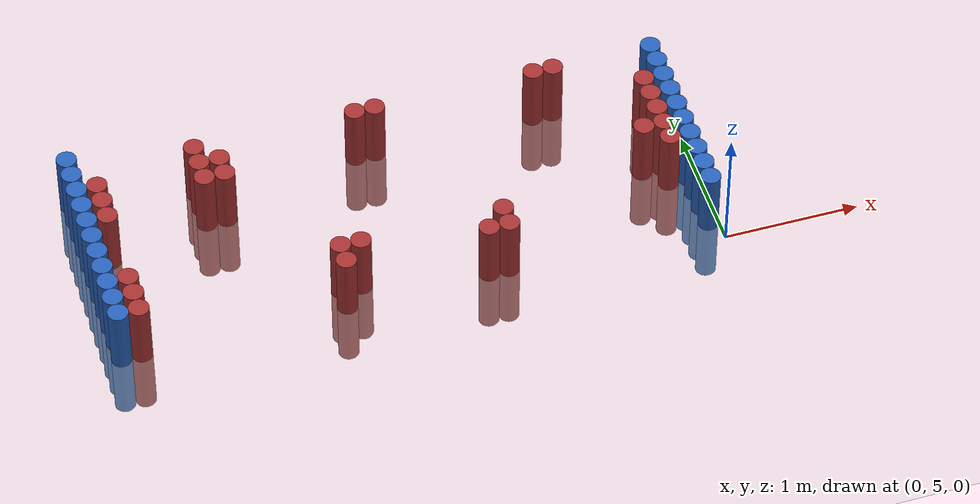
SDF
<sdf version="1.6">
 <world name="default">
  <model name="ground_plane">
   <static>1</static>
   <link name="link">
    <collision name="collision">
     <geometry><plane><normal>0 0 1</normal><size>100 100</size></plane></geometry>
     <surface><friction><ode><mu>100</mu><mu2>50</mu2></ode></friction></surface>
    </collision>
    <visual name="visual">
     <cast_shadows>0</cast_shadows>
     <geometry><plane><normal>0 0 1</normal><size>100 100</size></plane></geometry>
     <material>
      <script><uri>file://media/materials/scripts/gazebo.material</uri><name>Gazebo/Grey</name></script>
     </material>
    </visual>
   </link>
  </model>
  <model name="unit_cylinder_96">
   <static>1</static>
   <pose>-4.425000 5.175000 0.000000 0.000000 0.000000 0.000000</pose>
   <link name="link">
    <inertial>
     <mass>1</mass>
     <inertia><ixx>0.145833</ixx><ixy>0</ixy><ixz>0</ixz><iyy>0.145833</iyy><iyz>0</iyz><izz>0.125</izz></inertia>
    </inertial>
    <collision name="collision">
     <geometry><cylinder><radius>0.075000</radius><length>1</length></cylinder></geometry>
    </collision>
    <visual name="visual">
     <geometry><cylinder><radius>0.075000</radius><length>1</length></cylinder></geometry>
     <material>
      <ambient>0.152000 0.379000 0.720000 1</ambient>
      <diffuse>0.152000 0.379000 0.720000 1</diffuse>
     </material>
     <material>
      <script><name>Gazebo/Grey</name><uri>file://media/materials/scripts/gazebo.material</uri></script>
     </material>
    </visual>
   </link>
  </model>
  <model name="unit_cylinder_97">
   <static>1</static>
   <pose>-4.425000 5.325000 0.000000 0.000000 0.000000 0.000000</pose>
   <link name="link">
    <inertial>
     <mass>1</mass>
     <inertia><ixx>0.145833</ixx><ixy>0</ixy><ixz>0</ixz><iyy>0.145833</iyy><iyz>0</iyz><izz>0.125</izz></inertia>
    </inertial>
    <collision name="collision">
     <geometry><cylinder><radius>0.075000</radius><length>1</length></cylinder></geometry>
    </collision>
    <visual name="visual">
     <geometry><cylinder><radius>0.075000</radius><length>1</length></cylinder></geometry>
     <material>
      <ambient>0.152000 0.379000 0.720000 1</ambient>
      <diffuse>0.152000 0.379000 0.720000 1</diffuse>
     </material>
     <material>
      <script><name>Gazebo/Grey</name><uri>file://media/materials/scripts/gazebo.material</uri></script>
     </material>
    </visual>
   </link>
  </model>
  <model name="unit_cylinder_98">
   <static>1</static>
   <pose>-4.425000 5.475000 0.000000 0.000000 0.000000 0.000000</pose>
   <link name="link">
    <inertial>
     <mass>1</mass>
     <inertia><ixx>0.145833</ixx><ixy>0</ixy><ixz>0</ixz><iyy>0.145833</iyy><iyz>0</iyz><izz>0.125</izz></inertia>
    </inertial>
    <collision name="collision">
     <geometry><cylinder><radius>0.075000</radius><length>1</length></cylinder></geometry>
    </collision>
    <visual name="visual">
     <geometry><cylinder><radius>0.075000</radius><length>1</length></cylinder></geometry>
     <material>
      <ambient>0.152000 0.379000 0.720000 1</ambient>
      <diffuse>0.152000 0.379000 0.720000 1</diffuse>
     </material>
     <material>
      <script><name>Gazebo/Grey</name><uri>file://media/materials/scripts/gazebo.material</uri></script>
     </material>
    </visual>
   </link>
  </model>
  <model name="unit_cylinder_99">
   <static>1</static>
   <pose>-4.425000 5.625000 0.000000 0.000000 0.000000 0.000000</pose>
   <link name="link">
    <inertial>
     <mass>1</mass>
     <inertia><ixx>0.145833</ixx><ixy>0</ixy><ixz>0</ixz><iyy>0.145833</iyy><iyz>0</iyz><izz>0.125</izz></inertia>
    </inertial>
    <collision name="collision">
     <geometry><cylinder><radius>0.075000</radius><length>1</length></cylinder></geometry>
    </collision>
    <visual name="visual">
     <geometry><cylinder><radius>0.075000</radius><length>1</length></cylinder></geometry>
     <material>
      <ambient>0.152000 0.379000 0.720000 1</ambient>
      <diffuse>0.152000 0.379000 0.720000 1</diffuse>
     </material>
     <material>
      <script><name>Gazebo/Grey</name><uri>file://media/materials/scripts/gazebo.material</uri></script>
     </material>
    </visual>
   </link>
  </model>
  <model name="unit_cylinder_100">
   <static>1</static>
   <pose>-4.425000 5.775000 0.000000 0.000000 0.000000 0.000000</pose>
   <link name="link">
    <inertial>
     <mass>1</mass>
     <inertia><ixx>0.145833</ixx><ixy>0</ixy><ixz>0</ixz><iyy>0.145833</iyy><iyz>0</iyz><izz>0.125</izz></inertia>
    </inertial>
    <collision name="collision">
     <geometry><cylinder><radius>0.075000</radius><length>1</length></cylinder></geometry>
    </collision>
    <visual name="visual">
     <geometry><cylinder><radius>0.075000</radius><length>1</length></cylinder></geometry>
     <material>
      <ambient>0.152000 0.379000 0.720000 1</ambient>
      <diffuse>0.152000 0.379000 0.720000 1</diffuse>
     </material>
     <material>
      <script><name>Gazebo/Grey</name><uri>file://media/materials/scripts/gazebo.material</uri></script>
     </material>
    </visual>
   </link>
  </model>
  <model name="unit_cylinder_101">
   <static>1</static>
   <pose>-4.425000 5.925000 0.000000 0.000000 0.000000 0.000000</pose>
   <link name="link">
    <inertial>
     <mass>1</mass>
     <inertia><ixx>0.145833</ixx><ixy>0</ixy><ixz>0</ixz><iyy>0.145833</iyy><iyz>0</iyz><izz>0.125</izz></inertia>
    </inertial>
    <collision name="collision">
     <geometry><cylinder><radius>0.075000</radius><length>1</length></cylinder></geometry>
    </collision>
    <visual name="visual">
     <geometry><cylinder><radius>0.075000</radius><length>1</length></cylinder></geometry>
     <material>
      <ambient>0.152000 0.379000 0.720000 1</ambient>
      <diffuse>0.152000 0.379000 0.720000 1</diffuse>
     </material>
     <material>
      <script><name>Gazebo/Grey</name><uri>file://media/materials/scripts/gazebo.material</uri></script>
     </material>
    </visual>
   </link>
  </model>
  <model name="unit_cylinder_102">
   <static>1</static>
   <pose>-4.425000 6.075000 0.000000 0.000000 0.000000 0.000000</pose>
   <link name="link">
    <inertial>
     <mass>1</mass>
     <inertia><ixx>0.145833</ixx><ixy>0</ixy><ixz>0</ixz><iyy>0.145833</iyy><iyz>0</iyz><izz>0.125</izz></inertia>
    </inertial>
    <collision name="collision">
     <geometry><cylinder><radius>0.075000</radius><length>1</length></cylinder></geometry>
    </collision>
    <visual name="visual">
     <geometry><cylinder><radius>0.075000</radius><length>1</length></cylinder></geometry>
     <material>
      <ambient>0.152000 0.379000 0.720000 1</ambient>
      <diffuse>0.152000 0.379000 0.720000 1</diffuse>
     </material>
     <material>
      <script><name>Gazebo/Grey</name><uri>file://media/materials/scripts/gazebo.material</uri></script>
     </material>
    </visual>
   </link>
  </model>
  <model name="unit_cylinder_103">
   <static>1</static>
   <pose>-4.425000 6.225000 0.000000 0.000000 0.000000 0.000000</pose>
   <link name="link">
    <inertial>
     <mass>1</mass>
     <inertia><ixx>0.145833</ixx><ixy>0</ixy><ixz>0</ixz><iyy>0.145833</iyy><iyz>0</iyz><izz>0.125</izz></inertia>
    </inertial>
    <collision name="collision">
     <geometry><cylinder><radius>0.075000</radius><length>1</length></cylinder></geometry>
    </collision>
    <visual name="visual">
     <geometry><cylinder><radius>0.075000</radius><length>1</length></cylinder></geometry>
     <material>
      <ambient>0.152000 0.379000 0.720000 1</ambient>
      <diffuse>0.152000 0.379000 0.720000 1</diffuse>
     </material>
     <material>
      <script><name>Gazebo/Grey</name><uri>file://media/materials/scripts/gazebo.material</uri></script>
     </material>
    </visual>
   </link>
  </model>
  <model name="unit_cylinder_104">
   <static>1</static>
   <pose>-4.425000 6.375000 0.000000 0.000000 0.000000 0.000000</pose>
   <link name="link">
    <inertial>
     <mass>1</mass>
     <inertia><ixx>0.145833</ixx><ixy>0</ixy><ixz>0</ixz><iyy>0.145833</iyy><iyz>0</iyz><izz>0.125</izz></inertia>
    </inertial>
    <collision name="collision">
     <geometry><cylinder><radius>0.075000</radius><length>1</length></cylinder></geometry>
    </collision>
    <visual name="visual">
     <geometry><cylinder><radius>0.075000</radius><length>1</length></cylinder></geometry>
     <material>
      <ambient>0.152000 0.379000 0.720000 1</ambient>
      <diffuse>0.152000 0.379000 0.720000 1</diffuse>
     </material>
     <material>
      <script><name>Gazebo/Grey</name><uri>file://media/materials/scripts/gazebo.material</uri></script>
     </material>
    </visual>
   </link>
  </model>
  <model name="unit_cylinder_105">
   <static>1</static>
   <pose>-4.425000 6.525000 0.000000 0.000000 0.000000 0.000000</pose>
   <link name="link">
    <inertial>
     <mass>1</mass>
     <inertia><ixx>0.145833</ixx><ixy>0</ixy><ixz>0</ixz><iyy>0.145833</iyy><iyz>0</iyz><izz>0.125</izz></inertia>
    </inertial>
    <collision name="collision">
     <geometry><cylinder><radius>0.075000</radius><length>1</length></cylinder></geometry>
    </collision>
    <visual name="visual">
     <geometry><cylinder><radius>0.075000</radius><length>1</length></cylinder></geometry>
     <material>
      <ambient>0.152000 0.379000 0.720000 1</ambient>
      <diffuse>0.152000 0.379000 0.720000 1</diffuse>
     </material>
     <material>
      <script><name>Gazebo/Grey</name><uri>file://media/materials/scripts/gazebo.material</uri></script>
     </material>
    </visual>
   </link>
  </model>
  <model name="unit_cylinder_106">
   <static>1</static>
   <pose>-4.425000 6.675000 0.000000 0.000000 0.000000 0.000000</pose>
   <link name="link">
    <inertial>
     <mass>1</mass>
     <inertia><ixx>0.145833</ixx><ixy>0</ixy><ixz>0</ixz><iyy>0.145833</iyy><iyz>0</iyz><izz>0.125</izz></inertia>
    </inertial>
    <collision name="collision">
     <geometry><cylinder><radius>0.075000</radius><length>1</length></cylinder></geometry>
    </collision>
    <visual name="visual">
     <geometry><cylinder><radius>0.075000</radius><length>1</length></cylinder></geometry>
     <material>
      <ambient>0.152000 0.379000 0.720000 1</ambient>
      <diffuse>0.152000 0.379000 0.720000 1</diffuse>
     </material>
     <material>
      <script><name>Gazebo/Grey</name><uri>file://media/materials/scripts/gazebo.material</uri></script>
     </material>
    </visual>
   </link>
  </model>
  <model name="unit_cylinder_126">
   <static>1</static>
   <pose>-4.275000 5.175000 0.000000 0.000000 0.000000 0.000000</pose>
   <link name="link">
    <inertial>
     <mass>1</mass>
     <inertia><ixx>0.145833</ixx><ixy>0</ixy><ixz>0</ixz><iyy>0.145833</iyy><iyz>0</iyz><izz>0.125</izz></inertia>
    </inertial>
    <collision name="collision">
     <geometry><cylinder><radius>0.075000</radius><length>1</length></cylinder></geometry>
    </collision>
    <visual name="visual">
     <geometry><cylinder><radius>0.075000</radius><length>1</length></cylinder></geometry>
     <material>
      <ambient>0.648000 0.192000 0.192000 1</ambient>
      <diffuse>0.648000 0.192000 0.192000 1</diffuse>
     </material>
     <material>
      <script><name>Gazebo/Grey</name><uri>file://media/materials/scripts/gazebo.material</uri></script>
     </material>
    </visual>
   </link>
  </model>
  <model name="unit_cylinder_127">
   <static>1</static>
   <pose>-4.275000 5.325000 0.000000 0.000000 0.000000 0.000000</pose>
   <link name="link">
    <inertial>
     <mass>1</mass>
     <inertia><ixx>0.145833</ixx><ixy>0</ixy><ixz>0</ixz><iyy>0.145833</iyy><iyz>0</iyz><izz>0.125</izz></inertia>
    </inertial>
    <collision name="collision">
     <geometry><cylinder><radius>0.075000</radius><length>1</length></cylinder></geometry>
    </collision>
    <visual name="visual">
     <geometry><cylinder><radius>0.075000</radius><length>1</length></cylinder></geometry>
     <material>
      <ambient>0.648000 0.192000 0.192000 1</ambient>
      <diffuse>0.648000 0.192000 0.192000 1</diffuse>
     </material>
     <material>
      <script><name>Gazebo/Grey</name><uri>file://media/materials/scripts/gazebo.material</uri></script>
     </material>
    </visual>
   </link>
  </model>
  <model name="unit_cylinder_128">
   <static>1</static>
   <pose>-4.275000 5.475000 0.000000 0.000000 0.000000 0.000000</pose>
   <link name="link">
    <inertial>
     <mass>1</mass>
     <inertia><ixx>0.145833</ixx><ixy>0</ixy><ixz>0</ixz><iyy>0.145833</iyy><iyz>0</iyz><izz>0.125</izz></inertia>
    </inertial>
    <collision name="collision">
     <geometry><cylinder><radius>0.075000</radius><length>1</length></cylinder></geometry>
    </collision>
    <visual name="visual">
     <geometry><cylinder><radius>0.075000</radius><length>1</length></cylinder></geometry>
     <material>
      <ambient>0.648000 0.192000 0.192000 1</ambient>
      <diffuse>0.648000 0.192000 0.192000 1</diffuse>
     </material>
     <material>
      <script><name>Gazebo/Grey</name><uri>file://media/materials/scripts/gazebo.material</uri></script>
     </material>
    </visual>
   </link>
  </model>
  <model name="unit_cylinder_129">
   <static>1</static>
   <pose>-4.275000 6.075000 0.000000 0.000000 0.000000 0.000000</pose>
   <link name="link">
    <inertial>
     <mass>1</mass>
     <inertia><ixx>0.145833</ixx><ixy>0</ixy><ixz>0</ixz><iyy>0.145833</iyy><iyz>0</iyz><izz>0.125</izz></inertia>
    </inertial>
    <collision name="collision">
     <geometry><cylinder><radius>0.075000</radius><length>1</length></cylinder></geometry>
    </collision>
    <visual name="visual">
     <geometry><cylinder><radius>0.075000</radius><length>1</length></cylinder></geometry>
     <material>
      <ambient>0.648000 0.192000 0.192000 1</ambient>
      <diffuse>0.648000 0.192000 0.192000 1</diffuse>
     </material>
     <material>
      <script><name>Gazebo/Grey</name><uri>file://media/materials/scripts/gazebo.material</uri></script>
     </material>
    </visual>
   </link>
  </model>
  <model name="unit_cylinder_130">
   <static>1</static>
   <pose>-4.275000 6.225000 0.000000 0.000000 0.000000 0.000000</pose>
   <link name="link">
    <inertial>
     <mass>1</mass>
     <inertia><ixx>0.145833</ixx><ixy>0</ixy><ixz>0</ixz><iyy>0.145833</iyy><iyz>0</iyz><izz>0.125</izz></inertia>
    </inertial>
    <collision name="collision">
     <geometry><cylinder><radius>0.075000</radius><length>1</length></cylinder></geometry>
    </collision>
    <visual name="visual">
     <geometry><cylinder><radius>0.075000</radius><length>1</length></cylinder></geometry>
     <material>
      <ambient>0.648000 0.192000 0.192000 1</ambient>
      <diffuse>0.648000 0.192000 0.192000 1</diffuse>
     </material>
     <material>
      <script><name>Gazebo/Grey</name><uri>file://media/materials/scripts/gazebo.material</uri></script>
     </material>
    </visual>
   </link>
  </model>
  <model name="unit_cylinder_131">
   <static>1</static>
   <pose>-4.275000 6.375000 0.000000 0.000000 0.000000 0.000000</pose>
   <link name="link">
    <inertial>
     <mass>1</mass>
     <inertia><ixx>0.145833</ixx><ixy>0</ixy><ixz>0</ixz><iyy>0.145833</iyy><iyz>0</iyz><izz>0.125</izz></inertia>
    </inertial>
    <collision name="collision">
     <geometry><cylinder><radius>0.075000</radius><length>1</length></cylinder></geometry>
    </collision>
    <visual name="visual">
     <geometry><cylinder><radius>0.075000</radius><length>1</length></cylinder></geometry>
     <material>
      <ambient>0.648000 0.192000 0.192000 1</ambient>
      <diffuse>0.648000 0.192000 0.192000 1</diffuse>
     </material>
     <material>
      <script><name>Gazebo/Grey</name><uri>file://media/materials/scripts/gazebo.material</uri></script>
     </material>
    </visual>
   </link>
  </model>
  <model name="unit_cylinder_160">
   <static>1</static>
   <pose>-3.525000 6.225000 0.000000 0.000000 0.000000 0.000000</pose>
   <link name="link">
    <inertial>
     <mass>1</mass>
     <inertia><ixx>0.145833</ixx><ixy>0</ixy><ixz>0</ixz><iyy>0.145833</iyy><iyz>0</iyz><izz>0.125</izz></inertia>
    </inertial>
    <collision name="collision">
     <geometry><cylinder><radius>0.075000</radius><length>1</length></cylinder></geometry>
    </collision>
    <visual name="visual">
     <geometry><cylinder><radius>0.075000</radius><length>1</length></cylinder></geometry>
     <material>
      <ambient>0.648000 0.192000 0.192000 1</ambient>
      <diffuse>0.648000 0.192000 0.192000 1</diffuse>
     </material>
     <material>
      <script><name>Gazebo/Grey</name><uri>file://media/materials/scripts/gazebo.material</uri></script>
     </material>
    </visual>
   </link>
  </model>
  <model name="unit_cylinder_161">
   <static>1</static>
   <pose>-3.525000 6.375000 0.000000 0.000000 0.000000 0.000000</pose>
   <link name="link">
    <inertial>
     <mass>1</mass>
     <inertia><ixx>0.145833</ixx><ixy>0</ixy><ixz>0</ixz><iyy>0.145833</iyy><iyz>0</iyz><izz>0.125</izz></inertia>
    </inertial>
    <collision name="collision">
     <geometry><cylinder><radius>0.075000</radius><length>1</length></cylinder></geometry>
    </collision>
    <visual name="visual">
     <geometry><cylinder><radius>0.075000</radius><length>1</length></cylinder></geometry>
     <material>
      <ambient>0.648000 0.192000 0.192000 1</ambient>
      <diffuse>0.648000 0.192000 0.192000 1</diffuse>
     </material>
     <material>
      <script><name>Gazebo/Grey</name><uri>file://media/materials/scripts/gazebo.material</uri></script>
     </material>
    </visual>
   </link>
  </model>
  <model name="unit_cylinder_162">
   <static>1</static>
   <pose>-3.525000 6.525000 0.000000 0.000000 0.000000 0.000000</pose>
   <link name="link">
    <inertial>
     <mass>1</mass>
     <inertia><ixx>0.145833</ixx><ixy>0</ixy><ixz>0</ixz><iyy>0.145833</iyy><iyz>0</iyz><izz>0.125</izz></inertia>
    </inertial>
    <collision name="collision">
     <geometry><cylinder><radius>0.075000</radius><length>1</length></cylinder></geometry>
    </collision>
    <visual name="visual">
     <geometry><cylinder><radius>0.075000</radius><length>1</length></cylinder></geometry>
     <material>
      <ambient>0.648000 0.192000 0.192000 1</ambient>
      <diffuse>0.648000 0.192000 0.192000 1</diffuse>
     </material>
     <material>
      <script><name>Gazebo/Grey</name><uri>file://media/materials/scripts/gazebo.material</uri></script>
     </material>
    </visual>
   </link>
  </model>
  <model name="unit_cylinder_164">
   <static>1</static>
   <pose>-3.375000 6.225000 0.000000 0.000000 0.000000 0.000000</pose>
   <link name="link">
    <inertial>
     <mass>1</mass>
     <inertia><ixx>0.145833</ixx><ixy>0</ixy><ixz>0</ixz><iyy>0.145833</iyy><iyz>0</iyz><izz>0.125</izz></inertia>
    </inertial>
    <collision name="collision">
     <geometry><cylinder><radius>0.075000</radius><length>1</length></cylinder></geometry>
    </collision>
    <visual name="visual">
     <geometry><cylinder><radius>0.075000</radius><length>1</length></cylinder></geometry>
     <material>
      <ambient>0.648000 0.192000 0.192000 1</ambient>
      <diffuse>0.648000 0.192000 0.192000 1</diffuse>
     </material>
     <material>
      <script><name>Gazebo/Grey</name><uri>file://media/materials/scripts/gazebo.material</uri></script>
     </material>
    </visual>
   </link>
  </model>
  <model name="unit_cylinder_165">
   <static>1</static>
   <pose>-3.375000 6.375000 0.000000 0.000000 0.000000 0.000000</pose>
   <link name="link">
    <inertial>
     <mass>1</mass>
     <inertia><ixx>0.145833</ixx><ixy>0</ixy><ixz>0</ixz><iyy>0.145833</iyy><iyz>0</iyz><izz>0.125</izz></inertia>
    </inertial>
    <collision name="collision">
     <geometry><cylinder><radius>0.075000</radius><length>1</length></cylinder></geometry>
    </collision>
    <visual name="visual">
     <geometry><cylinder><radius>0.075000</radius><length>1</length></cylinder></geometry>
     <material>
      <ambient>0.648000 0.192000 0.192000 1</ambient>
      <diffuse>0.648000 0.192000 0.192000 1</diffuse>
     </material>
     <material>
      <script><name>Gazebo/Grey</name><uri>file://media/materials/scripts/gazebo.material</uri></script>
     </material>
    </visual>
   </link>
  </model>
  <model name="unit_cylinder_166">
   <static>1</static>
   <pose>-2.775000 5.175000 0.000000 0.000000 0.000000 0.000000</pose>
   <link name="link">
    <inertial>
     <mass>1</mass>
     <inertia><ixx>0.145833</ixx><ixy>0</ixy><ixz>0</ixz><iyy>0.145833</iyy><iyz>0</iyz><izz>0.125</izz></inertia>
    </inertial>
    <collision name="collision">
     <geometry><cylinder><radius>0.075000</radius><length>1</length></cylinder></geometry>
    </collision>
    <visual name="visual">
     <geometry><cylinder><radius>0.075000</radius><length>1</length></cylinder></geometry>
     <material>
      <ambient>0.648000 0.192000 0.192000 1</ambient>
      <diffuse>0.648000 0.192000 0.192000 1</diffuse>
     </material>
     <material>
      <script><name>Gazebo/Grey</name><uri>file://media/materials/scripts/gazebo.material</uri></script>
     </material>
    </visual>
   </link>
  </model>
  <model name="unit_cylinder_167">
   <static>1</static>
   <pose>-2.775000 5.325000 0.000000 0.000000 0.000000 0.000000</pose>
   <link name="link">
    <inertial>
     <mass>1</mass>
     <inertia><ixx>0.145833</ixx><ixy>0</ixy><ixz>0</ixz><iyy>0.145833</iyy><iyz>0</iyz><izz>0.125</izz></inertia>
    </inertial>
    <collision name="collision">
     <geometry><cylinder><radius>0.075000</radius><length>1</length></cylinder></geometry>
    </collision>
    <visual name="visual">
     <geometry><cylinder><radius>0.075000</radius><length>1</length></cylinder></geometry>
     <material>
      <ambient>0.648000 0.192000 0.192000 1</ambient>
      <diffuse>0.648000 0.192000 0.192000 1</diffuse>
     </material>
     <material>
      <script><name>Gazebo/Grey</name><uri>file://media/materials/scripts/gazebo.material</uri></script>
     </material>
    </visual>
   </link>
  </model>
  <model name="unit_cylinder_168">
   <static>1</static>
   <pose>-2.625000 5.325000 0.000000 0.000000 0.000000 0.000000</pose>
   <link name="link">
    <inertial>
     <mass>1</mass>
     <inertia><ixx>0.145833</ixx><ixy>0</ixy><ixz>0</ixz><iyy>0.145833</iyy><iyz>0</iyz><izz>0.125</izz></inertia>
    </inertial>
    <collision name="collision">
     <geometry><cylinder><radius>0.075000</radius><length>1</length></cylinder></geometry>
    </collision>
    <visual name="visual">
     <geometry><cylinder><radius>0.075000</radius><length>1</length></cylinder></geometry>
     <material>
      <ambient>0.648000 0.192000 0.192000 1</ambient>
      <diffuse>0.648000 0.192000 0.192000 1</diffuse>
     </material>
     <material>
      <script><name>Gazebo/Grey</name><uri>file://media/materials/scripts/gazebo.material</uri></script>
     </material>
    </visual>
   </link>
  </model>
  <model name="unit_cylinder_177">
   <static>1</static>
   <pose>-2.325000 6.525000 0.000000 0.000000 0.000000 0.000000</pose>
   <link name="link">
    <inertial>
     <mass>1</mass>
     <inertia><ixx>0.145833</ixx><ixy>0</ixy><ixz>0</ixz><iyy>0.145833</iyy><iyz>0</iyz><izz>0.125</izz></inertia>
    </inertial>
    <collision name="collision">
     <geometry><cylinder><radius>0.075000</radius><length>1</length></cylinder></geometry>
    </collision>
    <visual name="visual">
     <geometry><cylinder><radius>0.075000</radius><length>1</length></cylinder></geometry>
     <material>
      <ambient>0.648000 0.192000 0.192000 1</ambient>
      <diffuse>0.648000 0.192000 0.192000 1</diffuse>
     </material>
     <material>
      <script><name>Gazebo/Grey</name><uri>file://media/materials/scripts/gazebo.material</uri></script>
     </material>
    </visual>
   </link>
  </model>
  <model name="unit_cylinder_188">
   <static>1</static>
   <pose>-2.175000 6.525000 0.000000 0.000000 0.000000 0.000000</pose>
   <link name="link">
    <inertial>
     <mass>1</mass>
     <inertia><ixx>0.145833</ixx><ixy>0</ixy><ixz>0</ixz><iyy>0.145833</iyy><iyz>0</iyz><izz>0.125</izz></inertia>
    </inertial>
    <collision name="collision">
     <geometry><cylinder><radius>0.075000</radius><length>1</length></cylinder></geometry>
    </collision>
    <visual name="visual">
     <geometry><cylinder><radius>0.075000</radius><length>1</length></cylinder></geometry>
     <material>
      <ambient>0.648000 0.192000 0.192000 1</ambient>
      <diffuse>0.648000 0.192000 0.192000 1</diffuse>
     </material>
     <material>
      <script><name>Gazebo/Grey</name><uri>file://media/materials/scripts/gazebo.material</uri></script>
     </material>
    </visual>
   </link>
  </model>
  <model name="unit_cylinder_202">
   <static>1</static>
   <pose>-1.725000 5.175000 0.000000 0.000000 0.000000 0.000000</pose>
   <link name="link">
    <inertial>
     <mass>1</mass>
     <inertia><ixx>0.145833</ixx><ixy>0</ixy><ixz>0</ixz><iyy>0.145833</iyy><iyz>0</iyz><izz>0.125</izz></inertia>
    </inertial>
    <collision name="collision">
     <geometry><cylinder><radius>0.075000</radius><length>1</length></cylinder></geometry>
    </collision>
    <visual name="visual">
     <geometry><cylinder><radius>0.075000</radius><length>1</length></cylinder></geometry>
     <material>
      <ambient>0.648000 0.192000 0.192000 1</ambient>
      <diffuse>0.648000 0.192000 0.192000 1</diffuse>
     </material>
     <material>
      <script><name>Gazebo/Grey</name><uri>file://media/materials/scripts/gazebo.material</uri></script>
     </material>
    </visual>
   </link>
  </model>
  <model name="unit_cylinder_209">
   <static>1</static>
   <pose>-1.575000 5.175000 0.000000 0.000000 0.000000 0.000000</pose>
   <link name="link">
    <inertial>
     <mass>1</mass>
     <inertia><ixx>0.145833</ixx><ixy>0</ixy><ixz>0</ixz><iyy>0.145833</iyy><iyz>0</iyz><izz>0.125</izz></inertia>
    </inertial>
    <collision name="collision">
     <geometry><cylinder><radius>0.075000</radius><length>1</length></cylinder></geometry>
    </collision>
    <visual name="visual">
     <geometry><cylinder><radius>0.075000</radius><length>1</length></cylinder></geometry>
     <material>
      <ambient>0.648000 0.192000 0.192000 1</ambient>
      <diffuse>0.648000 0.192000 0.192000 1</diffuse>
     </material>
     <material>
      <script><name>Gazebo/Grey</name><uri>file://media/materials/scripts/gazebo.material</uri></script>
     </material>
    </visual>
   </link>
  </model>
  <model name="unit_cylinder_210">
   <static>1</static>
   <pose>-1.575000 5.325000 0.000000 0.000000 0.000000 0.000000</pose>
   <link name="link">
    <inertial>
     <mass>1</mass>
     <inertia><ixx>0.145833</ixx><ixy>0</ixy><ixz>0</ixz><iyy>0.145833</iyy><iyz>0</iyz><izz>0.125</izz></inertia>
    </inertial>
    <collision name="collision">
     <geometry><cylinder><radius>0.075000</radius><length>1</length></cylinder></geometry>
    </collision>
    <visual name="visual">
     <geometry><cylinder><radius>0.075000</radius><length>1</length></cylinder></geometry>
     <material>
      <ambient>0.648000 0.192000 0.192000 1</ambient>
      <diffuse>0.648000 0.192000 0.192000 1</diffuse>
     </material>
     <material>
      <script><name>Gazebo/Grey</name><uri>file://media/materials/scripts/gazebo.material</uri></script>
     </material>
    </visual>
   </link>
  </model>
  <model name="unit_cylinder_233">
   <static>1</static>
   <pose>-0.975000 6.525000 0.000000 0.000000 0.000000 0.000000</pose>
   <link name="link">
    <inertial>
     <mass>1</mass>
     <inertia><ixx>0.145833</ixx><ixy>0</ixy><ixz>0</ixz><iyy>0.145833</iyy><iyz>0</iyz><izz>0.125</izz></inertia>
    </inertial>
    <collision name="collision">
     <geometry><cylinder><radius>0.075000</radius><length>1</length></cylinder></geometry>
    </collision>
    <visual name="visual">
     <geometry><cylinder><radius>0.075000</radius><length>1</length></cylinder></geometry>
     <material>
      <ambient>0.648000 0.192000 0.192000 1</ambient>
      <diffuse>0.648000 0.192000 0.192000 1</diffuse>
     </material>
     <material>
      <script><name>Gazebo/Grey</name><uri>file://media/materials/scripts/gazebo.material</uri></script>
     </material>
    </visual>
   </link>
  </model>
  <model name="unit_cylinder_239">
   <static>1</static>
   <pose>-0.825000 6.525000 0.000000 0.000000 0.000000 0.000000</pose>
   <link name="link">
    <inertial>
     <mass>1</mass>
     <inertia><ixx>0.145833</ixx><ixy>0</ixy><ixz>0</ixz><iyy>0.145833</iyy><iyz>0</iyz><izz>0.125</izz></inertia>
    </inertial>
    <collision name="collision">
     <geometry><cylinder><radius>0.075000</radius><length>1</length></cylinder></geometry>
    </collision>
    <visual name="visual">
     <geometry><cylinder><radius>0.075000</radius><length>1</length></cylinder></geometry>
     <material>
      <ambient>0.648000 0.192000 0.192000 1</ambient>
      <diffuse>0.648000 0.192000 0.192000 1</diffuse>
     </material>
     <material>
      <script><name>Gazebo/Grey</name><uri>file://media/materials/scripts/gazebo.material</uri></script>
     </material>
    </visual>
   </link>
  </model>
  <model name="unit_cylinder_245">
   <static>1</static>
   <pose>-0.375000 5.775000 0.000000 0.000000 0.000000 0.000000</pose>
   <link name="link">
    <inertial>
     <mass>1</mass>
     <inertia><ixx>0.145833</ixx><ixy>0</ixy><ixz>0</ixz><iyy>0.145833</iyy><iyz>0</iyz><izz>0.125</izz></inertia>
    </inertial>
    <collision name="collision">
     <geometry><cylinder><radius>0.075000</radius><length>1</length></cylinder></geometry>
    </collision>
    <visual name="visual">
     <geometry><cylinder><radius>0.075000</radius><length>1</length></cylinder></geometry>
     <material>
      <ambient>0.648000 0.192000 0.192000 1</ambient>
      <diffuse>0.648000 0.192000 0.192000 1</diffuse>
     </material>
     <material>
      <script><name>Gazebo/Grey</name><uri>file://media/materials/scripts/gazebo.material</uri></script>
     </material>
    </visual>
   </link>
  </model>
  <model name="unit_cylinder_247">
   <static>1</static>
   <pose>-0.225000 5.625000 0.000000 0.000000 0.000000 0.000000</pose>
   <link name="link">
    <inertial>
     <mass>1</mass>
     <inertia><ixx>0.145833</ixx><ixy>0</ixy><ixz>0</ixz><iyy>0.145833</iyy><iyz>0</iyz><izz>0.125</izz></inertia>
    </inertial>
    <collision name="collision">
     <geometry><cylinder><radius>0.075000</radius><length>1</length></cylinder></geometry>
    </collision>
    <visual name="visual">
     <geometry><cylinder><radius>0.075000</radius><length>1</length></cylinder></geometry>
     <material>
      <ambient>0.648000 0.192000 0.192000 1</ambient>
      <diffuse>0.648000 0.192000 0.192000 1</diffuse>
     </material>
     <material>
      <script><name>Gazebo/Grey</name><uri>file://media/materials/scripts/gazebo.material</uri></script>
     </material>
    </visual>
   </link>
  </model>
  <model name="unit_cylinder_248">
   <static>1</static>
   <pose>-0.225000 5.775000 0.000000 0.000000 0.000000 0.000000</pose>
   <link name="link">
    <inertial>
     <mass>1</mass>
     <inertia><ixx>0.145833</ixx><ixy>0</ixy><ixz>0</ixz><iyy>0.145833</iyy><iyz>0</iyz><izz>0.125</izz></inertia>
    </inertial>
    <collision name="collision">
     <geometry><cylinder><radius>0.075000</radius><length>1</length></cylinder></geometry>
    </collision>
    <visual name="visual">
     <geometry><cylinder><radius>0.075000</radius><length>1</length></cylinder></geometry>
     <material>
      <ambient>0.648000 0.192000 0.192000 1</ambient>
      <diffuse>0.648000 0.192000 0.192000 1</diffuse>
     </material>
     <material>
      <script><name>Gazebo/Grey</name><uri>file://media/materials/scripts/gazebo.material</uri></script>
     </material>
    </visual>
   </link>
  </model>
  <model name="unit_cylinder_249">
   <static>1</static>
   <pose>-0.225000 5.925000 0.000000 0.000000 0.000000 0.000000</pose>
   <link name="link">
    <inertial>
     <mass>1</mass>
     <inertia><ixx>0.145833</ixx><ixy>0</ixy><ixz>0</ixz><iyy>0.145833</iyy><iyz>0</iyz><izz>0.125</izz></inertia>
    </inertial>
    <collision name="collision">
     <geometry><cylinder><radius>0.075000</radius><length>1</length></cylinder></geometry>
    </collision>
    <visual name="visual">
     <geometry><cylinder><radius>0.075000</radius><length>1</length></cylinder></geometry>
     <material>
      <ambient>0.648000 0.192000 0.192000 1</ambient>
      <diffuse>0.648000 0.192000 0.192000 1</diffuse>
     </material>
     <material>
      <script><name>Gazebo/Grey</name><uri>file://media/materials/scripts/gazebo.material</uri></script>
     </material>
    </visual>
   </link>
  </model>
  <model name="unit_cylinder_250">
   <static>1</static>
   <pose>-0.225000 6.075000 0.000000 0.000000 0.000000 0.000000</pose>
   <link name="link">
    <inertial>
     <mass>1</mass>
     <inertia><ixx>0.145833</ixx><ixy>0</ixy><ixz>0</ixz><iyy>0.145833</iyy><iyz>0</iyz><izz>0.125</izz></inertia>
    </inertial>
    <collision name="collision">
     <geometry><cylinder><radius>0.075000</radius><length>1</length></cylinder></geometry>
    </collision>
    <visual name="visual">
     <geometry><cylinder><radius>0.075000</radius><length>1</length></cylinder></geometry>
     <material>
      <ambient>0.648000 0.192000 0.192000 1</ambient>
      <diffuse>0.648000 0.192000 0.192000 1</diffuse>
     </material>
     <material>
      <script><name>Gazebo/Grey</name><uri>file://media/materials/scripts/gazebo.material</uri></script>
     </material>
    </visual>
   </link>
  </model>
  <model name="unit_cylinder_251">
   <static>1</static>
   <pose>-0.225000 6.225000 0.000000 0.000000 0.000000 0.000000</pose>
   <link name="link">
    <inertial>
     <mass>1</mass>
     <inertia><ixx>0.145833</ixx><ixy>0</ixy><ixz>0</ixz><iyy>0.145833</iyy><iyz>0</iyz><izz>0.125</izz></inertia>
    </inertial>
    <collision name="collision">
     <geometry><cylinder><radius>0.075000</radius><length>1</length></cylinder></geometry>
    </collision>
    <visual name="visual">
     <geometry><cylinder><radius>0.075000</radius><length>1</length></cylinder></geometry>
     <material>
      <ambient>0.648000 0.192000 0.192000 1</ambient>
      <diffuse>0.648000 0.192000 0.192000 1</diffuse>
     </material>
     <material>
      <script><name>Gazebo/Grey</name><uri>file://media/materials/scripts/gazebo.material</uri></script>
     </material>
    </visual>
   </link>
  </model>
  <model name="unit_cylinder_258">
   <static>1</static>
   <pose>-0.075000 5.175000 0.000000 0.000000 0.000000 0.000000</pose>
   <link name="link">
    <inertial>
     <mass>1</mass>
     <inertia><ixx>0.145833</ixx><ixy>0</ixy><ixz>0</ixz><iyy>0.145833</iyy><iyz>0</iyz><izz>0.125</izz></inertia>
    </inertial>
    <collision name="collision">
     <geometry><cylinder><radius>0.075000</radius><length>1</length></cylinder></geometry>
    </collision>
    <visual name="visual">
     <geometry><cylinder><radius>0.075000</radius><length>1</length></cylinder></geometry>
     <material>
      <ambient>0.152000 0.379000 0.720000 1</ambient>
      <diffuse>0.152000 0.379000 0.720000 1</diffuse>
     </material>
     <material>
      <script><name>Gazebo/Grey</name><uri>file://media/materials/scripts/gazebo.material</uri></script>
     </material>
    </visual>
   </link>
  </model>
  <model name="unit_cylinder_259">
   <static>1</static>
   <pose>-0.075000 5.325000 0.000000 0.000000 0.000000 0.000000</pose>
   <link name="link">
    <inertial>
     <mass>1</mass>
     <inertia><ixx>0.145833</ixx><ixy>0</ixy><ixz>0</ixz><iyy>0.145833</iyy><iyz>0</iyz><izz>0.125</izz></inertia>
    </inertial>
    <collision name="collision">
     <geometry><cylinder><radius>0.075000</radius><length>1</length></cylinder></geometry>
    </collision>
    <visual name="visual">
     <geometry><cylinder><radius>0.075000</radius><length>1</length></cylinder></geometry>
     <material>
      <ambient>0.152000 0.379000 0.720000 1</ambient>
      <diffuse>0.152000 0.379000 0.720000 1</diffuse>
     </material>
     <material>
      <script><name>Gazebo/Grey</name><uri>file://media/materials/scripts/gazebo.material</uri></script>
     </material>
    </visual>
   </link>
  </model>
  <model name="unit_cylinder_260">
   <static>1</static>
   <pose>-0.075000 5.475000 0.000000 0.000000 0.000000 0.000000</pose>
   <link name="link">
    <inertial>
     <mass>1</mass>
     <inertia><ixx>0.145833</ixx><ixy>0</ixy><ixz>0</ixz><iyy>0.145833</iyy><iyz>0</iyz><izz>0.125</izz></inertia>
    </inertial>
    <collision name="collision">
     <geometry><cylinder><radius>0.075000</radius><length>1</length></cylinder></geometry>
    </collision>
    <visual name="visual">
     <geometry><cylinder><radius>0.075000</radius><length>1</length></cylinder></geometry>
     <material>
      <ambient>0.152000 0.379000 0.720000 1</ambient>
      <diffuse>0.152000 0.379000 0.720000 1</diffuse>
     </material>
     <material>
      <script><name>Gazebo/Grey</name><uri>file://media/materials/scripts/gazebo.material</uri></script>
     </material>
    </visual>
   </link>
  </model>
  <model name="unit_cylinder_261">
   <static>1</static>
   <pose>-0.075000 5.625000 0.000000 0.000000 0.000000 0.000000</pose>
   <link name="link">
    <inertial>
     <mass>1</mass>
     <inertia><ixx>0.145833</ixx><ixy>0</ixy><ixz>0</ixz><iyy>0.145833</iyy><iyz>0</iyz><izz>0.125</izz></inertia>
    </inertial>
    <collision name="collision">
     <geometry><cylinder><radius>0.075000</radius><length>1</length></cylinder></geometry>
    </collision>
    <visual name="visual">
     <geometry><cylinder><radius>0.075000</radius><length>1</length></cylinder></geometry>
     <material>
      <ambient>0.152000 0.379000 0.720000 1</ambient>
      <diffuse>0.152000 0.379000 0.720000 1</diffuse>
     </material>
     <material>
      <script><name>Gazebo/Grey</name><uri>file://media/materials/scripts/gazebo.material</uri></script>
     </material>
    </visual>
   </link>
  </model>
  <model name="unit_cylinder_262">
   <static>1</static>
   <pose>-0.075000 5.775000 0.000000 0.000000 0.000000 0.000000</pose>
   <link name="link">
    <inertial>
     <mass>1</mass>
     <inertia><ixx>0.145833</ixx><ixy>0</ixy><ixz>0</ixz><iyy>0.145833</iyy><iyz>0</iyz><izz>0.125</izz></inertia>
    </inertial>
    <collision name="collision">
     <geometry><cylinder><radius>0.075000</radius><length>1</length></cylinder></geometry>
    </collision>
    <visual name="visual">
     <geometry><cylinder><radius>0.075000</radius><length>1</length></cylinder></geometry>
     <material>
      <ambient>0.152000 0.379000 0.720000 1</ambient>
      <diffuse>0.152000 0.379000 0.720000 1</diffuse>
     </material>
     <material>
      <script><name>Gazebo/Grey</name><uri>file://media/materials/scripts/gazebo.material</uri></script>
     </material>
    </visual>
   </link>
  </model>
  <model name="unit_cylinder_263">
   <static>1</static>
   <pose>-0.075000 5.925000 0.000000 0.000000 0.000000 0.000000</pose>
   <link name="link">
    <inertial>
     <mass>1</mass>
     <inertia><ixx>0.145833</ixx><ixy>0</ixy><ixz>0</ixz><iyy>0.145833</iyy><iyz>0</iyz><izz>0.125</izz></inertia>
    </inertial>
    <collision name="collision">
     <geometry><cylinder><radius>0.075000</radius><length>1</length></cylinder></geometry>
    </collision>
    <visual name="visual">
     <geometry><cylinder><radius>0.075000</radius><length>1</length></cylinder></geometry>
     <material>
      <ambient>0.152000 0.379000 0.720000 1</ambient>
      <diffuse>0.152000 0.379000 0.720000 1</diffuse>
     </material>
     <material>
      <script><name>Gazebo/Grey</name><uri>file://media/materials/scripts/gazebo.material</uri></script>
     </material>
    </visual>
   </link>
  </model>
  <model name="unit_cylinder_264">
   <static>1</static>
   <pose>-0.075000 6.075000 0.000000 0.000000 0.000000 0.000000</pose>
   <link name="link">
    <inertial>
     <mass>1</mass>
     <inertia><ixx>0.145833</ixx><ixy>0</ixy><ixz>0</ixz><iyy>0.145833</iyy><iyz>0</iyz><izz>0.125</izz></inertia>
    </inertial>
    <collision name="collision">
     <geometry><cylinder><radius>0.075000</radius><length>1</length></cylinder></geometry>
    </collision>
    <visual name="visual">
     <geometry><cylinder><radius>0.075000</radius><length>1</length></cylinder></geometry>
     <material>
      <ambient>0.152000 0.379000 0.720000 1</ambient>
      <diffuse>0.152000 0.379000 0.720000 1</diffuse>
     </material>
     <material>
      <script><name>Gazebo/Grey</name><uri>file://media/materials/scripts/gazebo.material</uri></script>
     </material>
    </visual>
   </link>
  </model>
  <model name="unit_cylinder_265">
   <static>1</static>
   <pose>-0.075000 6.225000 0.000000 0.000000 0.000000 0.000000</pose>
   <link name="link">
    <inertial>
     <mass>1</mass>
     <inertia><ixx>0.145833</ixx><ixy>0</ixy><ixz>0</ixz><iyy>0.145833</iyy><iyz>0</iyz><izz>0.125</izz></inertia>
    </inertial>
    <collision name="collision">
     <geometry><cylinder><radius>0.075000</radius><length>1</length></cylinder></geometry>
    </collision>
    <visual name="visual">
     <geometry><cylinder><radius>0.075000</radius><length>1</length></cylinder></geometry>
     <material>
      <ambient>0.152000 0.379000 0.720000 1</ambient>
      <diffuse>0.152000 0.379000 0.720000 1</diffuse>
     </material>
     <material>
      <script><name>Gazebo/Grey</name><uri>file://media/materials/scripts/gazebo.material</uri></script>
     </material>
    </visual>
   </link>
  </model>
  <model name="unit_cylinder_266">
   <static>1</static>
   <pose>-0.075000 6.375000 0.000000 0.000000 0.000000 0.000000</pose>
   <link name="link">
    <inertial>
     <mass>1</mass>
     <inertia><ixx>0.145833</ixx><ixy>0</ixy><ixz>0</ixz><iyy>0.145833</iyy><iyz>0</iyz><izz>0.125</izz></inertia>
    </inertial>
    <collision name="collision">
     <geometry><cylinder><radius>0.075000</radius><length>1</length></cylinder></geometry>
    </collision>
    <visual name="visual">
     <geometry><cylinder><radius>0.075000</radius><length>1</length></cylinder></geometry>
     <material>
      <ambient>0.152000 0.379000 0.720000 1</ambient>
      <diffuse>0.152000 0.379000 0.720000 1</diffuse>
     </material>
     <material>
      <script><name>Gazebo/Grey</name><uri>file://media/materials/scripts/gazebo.material</uri></script>
     </material>
    </visual>
   </link>
  </model>
  <model name="unit_cylinder_267">
   <static>1</static>
   <pose>-0.075000 6.525000 0.000000 0.000000 0.000000 0.000000</pose>
   <link name="link">
    <inertial>
     <mass>1</mass>
     <inertia><ixx>0.145833</ixx><ixy>0</ixy><ixz>0</ixz><iyy>0.145833</iyy><iyz>0</iyz><izz>0.125</izz></inertia>
    </inertial>
    <collision name="collision">
     <geometry><cylinder><radius>0.075000</radius><length>1</length></cylinder></geometry>
    </collision>
    <visual name="visual">
     <geometry><cylinder><radius>0.075000</radius><length>1</length></cylinder></geometry>
     <material>
      <ambient>0.152000 0.379000 0.720000 1</ambient>
      <diffuse>0.152000 0.379000 0.720000 1</diffuse>
     </material>
     <material>
      <script><name>Gazebo/Grey</name><uri>file://media/materials/scripts/gazebo.material</uri></script>
     </material>
    </visual>
   </link>
  </model>
 </world>
</sdf>
